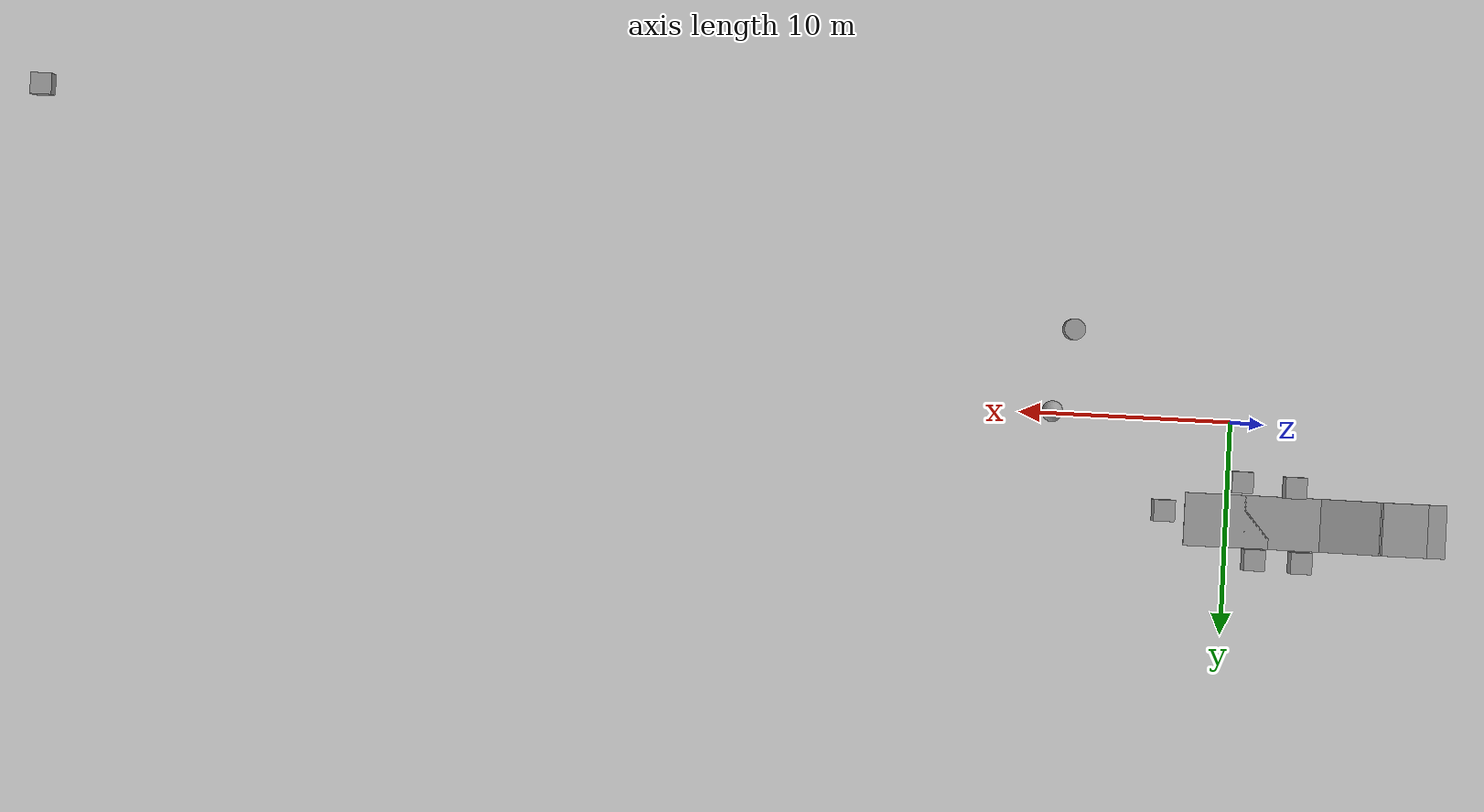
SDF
<sdf version="1.6">
 <world name="default">
  <light name="sun" type="directional">
   <pose>0 0 10 0 -0 0</pose>
   <diffuse>0.8 0.8 0.8 1</diffuse>
   <specular>0.2 0.2 0.2 1</specular>
   <attenuation>
    <range>1000</range>
    <constant>0.9</constant>
    <linear>0.01</linear>
    <quadratic>0.001</quadratic>
   </attenuation>
   <direction>-0.5 0.1 -0.9</direction>
  </light>
  <model name="ground_plane">
   <static>1</static>
   <link name="link">
    <collision name="collision">
     <geometry><plane><normal>0 0 1</normal><size>100 100</size></plane></geometry>
     <surface>
      <contact><collide_bitmask>65535</collide_bitmask></contact>
      <friction><ode><mu>100</mu><mu2>50</mu2></ode></friction>
     </surface>
    </collision>
    <visual name="visual">
     <cast_shadows>0</cast_shadows>
     <geometry><plane><normal>0 0 1</normal><size>100 100</size></plane></geometry>
     <material>
      <script><uri>file://media/materials/scripts/gazebo.material</uri><name>Gazebo/Grey</name></script>
     </material>
    </visual>
   </link>
  </model>
  <gravity>0 0 -9.8</gravity>
  <magnetic_field>6e-06 2.3e-05 -4.2e-05</magnetic_field>
  <atmosphere type="adiabatic"/>
  <physics name="default_physics" default="0" type="ode">
   <max_step_size>0.001</max_step_size>
   <real_time_factor>1</real_time_factor>
   <real_time_update_rate>1000</real_time_update_rate>
  </physics>
  <scene><ambient>0.4 0.4 0.4 1</ambient><background>0.7 0.7 0.7 1</background><shadows>1</shadows></scene>
  <audio><device>default</device></audio>
  <spherical_coordinates>
   <surface_model>EARTH_WGS84</surface_model>
   <latitude_deg>0</latitude_deg>
   <longitude_deg>0</longitude_deg>
   <elevation>0</elevation>
   <heading_deg>0</heading_deg>
  </spherical_coordinates>
  <model name="Diff_Drive">
   <link name="base_link">
    <inertial>
     <mass>5.00001</mass>
     <inertia><ixx>1</ixx><ixy>0</ixy><ixz>-2.59999e-08</ixz><iyy>1</iyy><iyz>0</iyz><izz>1</izz></inertia>
    </inertial>
    <sensor name="camera" type="depth">
     <always_on>1</always_on>
     <visualize>1</visualize>
     <update_rate>20</update_rate>
     <camera name="__default__">
      <pose>0 0 0 -1.57079 -1.57079 3.14159</pose>
      <horizontal_fov>1.0472</horizontal_fov>
      <image><format>B8G8R8</format><width>640</width><height>480</height></image>
      <clip><near>0.05</near><far>8</far></clip>
     </camera>
     <plugin name="kinect_camera_controller" filename="libgazebo_ros_openni_kinect.so">
      <cameraName>camera</cameraName>
      <alwaysOn>1</alwaysOn>
      <updateRate>10</updateRate>
      <imageTopicName>rgb/image_raw</imageTopicName>
      <depthImageTopicName>depth/image_raw</depthImageTopicName>
      <pointCloudTopicName>depth/points</pointCloudTopicName>
      <cameraInfoTopicName>rgb/camera_info</cameraInfoTopicName>
      <depthImageCameraInfoTopicName>depth/camera_info</depthImageCameraInfoTopicName>
      <frameName>camera_link</frameName>
      <baseline>0.1</baseline>
      <distortion_k1>0.0</distortion_k1>
      <distortion_k2>0.0</distortion_k2>
      <distortion_k3>0.0</distortion_k3>
      <distortion_t1>0.0</distortion_t1>
      <distortion_t2>0.0</distortion_t2>
      <pointCloudCutoff>0.4</pointCloudCutoff>
      <robotNamespace>/</robotNamespace>
     </plugin>
     <pose>0.05 0 0.05 -1.5708 -0 -1.5708</pose>
    </sensor>
    <sensor name="base_link_hokuyo_sensor" type="ray">
     <visualize>0</visualize>
     <update_rate>40</update_rate>
     <ray>
      <scan>
       <horizontal>
        <samples>400</samples>
        <resolution>1</resolution>
        <min_angle>-2.61799</min_angle>
        <max_angle>2.61799</max_angle>
       </horizontal>
       <vertical><samples>1</samples><min_angle>0</min_angle><max_angle>0</max_angle></vertical>
      </scan>
      <range><min>0.1</min><max>30</max><resolution>0.01</resolution></range>
      <noise><type>gaussian</type><stddev>0.01</stddev></noise>
     </ray>
     <plugin name="gazebo_ros_lidar_controller" filename="libgazebo_ros_laser.so">
      <topicName>/scan</topicName>
      <frameName>hokuyo_sensor</frameName>
      <robotNamespace>/</robotNamespace>
     </plugin>
     <pose>0.02 0 0.13 0 -0 0</pose>
    </sensor>
    <sensor name="imu_sensor" type="imu">
     <always_on>1</always_on>
     <update_rate>100</update_rate>
     <visualize>1</visualize>
     <topic>data</topic>
     <plugin name="imu_plugin" filename="libgazebo_ros_imu_sensor.so">
      <topicName>imu/data</topicName>
      <bodyName>imu_link</bodyName>
      <updateRateHZ>10.0</updateRateHZ>
      <gaussianNoise>0.0</gaussianNoise>
      <xyzOffset>0 0 0</xyzOffset>
      <rpyOffset>0 0 0</rpyOffset>
      <frameName>imu_link</frameName>
      <robotNamespace>/</robotNamespace>
     </plugin>
    </sensor>
   </link>
   <link name="left_back_wheel">
    <pose>-0.058 0.115 0.015 0 -0 0</pose>
    <inertial>
     <mass>0.4</mass>
     <inertia>
      <ixx>0.000184189</ixx>
      <ixy>0</ixy>
      <ixz>0</ixz>
      <iyy>0.000184189</iyy>
      <iyz>0</iyz>
      <izz>0.000336111</izz>
     </inertia>
    </inertial>
    <collision name="left_back_wheel_collision">
     <pose>0 0 0 1.57 -0 0</pose>
     <geometry><cylinder><length>0.022</length><radius>0.011</radius></cylinder></geometry>
     <surface>
      <contact><ode><kp>1e+07</kp><kd>1</kd></ode></contact>
      <friction><ode><mu>200</mu><mu2>100</mu2></ode></friction>
     </surface>
    </collision>
    <visual name="left_back_wheel_visual">
     <pose>0 0 0 1.57 -0 0</pose>
     <geometry><cylinder><length>0.022</length><radius>0.011</radius></cylinder></geometry>
     <material>
      <script><name>Gazebo/Black</name><uri>file://media/materials/scripts/gazebo.material</uri></script>
     </material>
    </visual>
   </link>
   <joint name="left_back_wheel_joint" type="revolute">
    <child>left_back_wheel</child>
    <parent>base_link</parent>
    <axis>
     <xyz>0 1 0</xyz>
     <limit><lower>-1e+16</lower><upper>1e+16</upper></limit>
     <dynamics>
      <damping>0</damping>
      <friction>0</friction>
      <spring_reference>0</spring_reference>
      <spring_stiffness>0</spring_stiffness>
     </dynamics>
     <use_parent_model_frame>1</use_parent_model_frame>
    </axis>
   </joint>
   <link name="left_front_wheel">
    <pose>0.062 0.115 0.015 0 -0 0</pose>
    <inertial>
     <mass>0.4</mass>
     <inertia>
      <ixx>0.000184189</ixx>
      <ixy>0</ixy>
      <ixz>0</ixz>
      <iyy>0.000184189</iyy>
      <iyz>0</iyz>
      <izz>0.000336111</izz>
     </inertia>
    </inertial>
    <collision name="left_front_wheel_collision">
     <pose>0 0 0 1.57 -0 0</pose>
     <geometry><cylinder><length>0.022</length><radius>0.011</radius></cylinder></geometry>
     <surface>
      <contact><ode><kp>1e+07</kp><kd>1</kd></ode></contact>
      <friction><ode><mu>200</mu><mu2>100</mu2></ode></friction>
     </surface>
    </collision>
    <visual name="left_front_wheel_visual">
     <pose>0 0 0 1.57 -0 0</pose>
     <geometry><cylinder><length>0.022</length><radius>0.011</radius></cylinder></geometry>
     <material>
      <script><name>Gazebo/Black</name><uri>file://media/materials/scripts/gazebo.material</uri></script>
     </material>
    </visual>
   </link>
   <joint name="left_front_wheel_joint" type="revolute">
    <child>left_front_wheel</child>
    <parent>base_link</parent>
    <axis>
     <xyz>0 1 0</xyz>
     <limit><lower>-1e+16</lower><upper>1e+16</upper></limit>
     <dynamics>
      <damping>0</damping>
      <friction>0</friction>
      <spring_reference>0</spring_reference>
      <spring_stiffness>0</spring_stiffness>
     </dynamics>
     <use_parent_model_frame>1</use_parent_model_frame>
    </axis>
   </joint>
   <link name="right_back_wheel">
    <pose>-0.058 -0.115 0.015 0 -0 0</pose>
    <inertial>
     <mass>0.4</mass>
     <inertia>
      <ixx>0.000184189</ixx>
      <ixy>0</ixy>
      <ixz>0</ixz>
      <iyy>0.000184189</iyy>
      <iyz>0</iyz>
      <izz>0.000336111</izz>
     </inertia>
    </inertial>
    <collision name="right_back_wheel_collision">
     <pose>0 0 0 1.57 -0 0</pose>
     <geometry><cylinder><length>0.022</length><radius>0.011</radius></cylinder></geometry>
     <surface>
      <contact><ode><kp>1e+07</kp><kd>1</kd></ode></contact>
      <friction><ode><mu>200</mu><mu2>100</mu2></ode></friction>
     </surface>
    </collision>
    <visual name="right_back_wheel_visual">
     <pose>0 0 0 1.57 -0 0</pose>
     <geometry><cylinder><length>0.022</length><radius>0.011</radius></cylinder></geometry>
     <material>
      <script><name>Gazebo/Black</name><uri>file://media/materials/scripts/gazebo.material</uri></script>
     </material>
    </visual>
   </link>
   <joint name="right_back_wheel_joint" type="revolute">
    <child>right_back_wheel</child>
    <parent>base_link</parent>
    <axis>
     <xyz>0 1 0</xyz>
     <limit><lower>-1e+16</lower><upper>1e+16</upper></limit>
     <dynamics>
      <damping>0</damping>
      <friction>0</friction>
      <spring_reference>0</spring_reference>
      <spring_stiffness>0</spring_stiffness>
     </dynamics>
     <use_parent_model_frame>1</use_parent_model_frame>
    </axis>
   </joint>
   <link name="right_front_wheel">
    <pose>0.062 -0.115 0.015 0 -0 0</pose>
    <inertial>
     <mass>0.4</mass>
     <inertia>
      <ixx>0.000184189</ixx>
      <ixy>0</ixy>
      <ixz>0</ixz>
      <iyy>0.000184189</iyy>
      <iyz>0</iyz>
      <izz>0.000336111</izz>
     </inertia>
    </inertial>
    <collision name="right_front_wheel_collision">
     <pose>0 0 0 1.57 -0 0</pose>
     <geometry><cylinder><length>0.022</length><radius>0.011</radius></cylinder></geometry>
     <surface>
      <contact><ode><kp>1e+07</kp><kd>1</kd></ode></contact>
      <friction><ode><mu>200</mu><mu2>100</mu2></ode></friction>
     </surface>
    </collision>
    <visual name="right_front_wheel_visual">
     <pose>0 0 0 1.57 -0 0</pose>
     <geometry><cylinder><length>0.022</length><radius>0.011</radius></cylinder></geometry>
     <material>
      <script><name>Gazebo/Black</name><uri>file://media/materials/scripts/gazebo.material</uri></script>
     </material>
    </visual>
   </link>
   <joint name="right_front_wheel_joint" type="revolute">
    <child>right_front_wheel</child>
    <parent>base_link</parent>
    <axis>
     <xyz>0 1 0</xyz>
     <limit><lower>-1e+16</lower><upper>1e+16</upper></limit>
     <dynamics>
      <damping>0</damping>
      <friction>0</friction>
      <spring_reference>0</spring_reference>
      <spring_stiffness>0</spring_stiffness>
     </dynamics>
     <use_parent_model_frame>1</use_parent_model_frame>
    </axis>
   </joint>
   <static>0</static>
   <plugin name="gazebo_ros_control" filename="libgazebo_ros_control.so">
    <robotNamespace>/</robotNamespace>
   </plugin>
   <pose>-0.84494 5.22609 0.000306 -0.000485 0.000874 0.000875</pose>
  </model>
  <light name="user_directional_light_0" type="directional">
   <pose>0.385298 -3.26216 1 0 -0 0</pose>
   <diffuse>0.5 0.5 0.5 1</diffuse>
   <specular>0.1 0.1 0.1 1</specular>
   <direction>0.1 0.1 -0.9</direction>
   <attenuation>
    <range>20</range>
    <constant>0.5</constant>
    <linear>0.01</linear>
    <quadratic>0.001</quadratic>
   </attenuation>
  </light>
  <model name="unit_box">
   <pose>56.6301 -13.0205 0.499995 1e-05 -0 0</pose>
   <link name="link">
    <inertial>
     <mass>1</mass>
     <inertia>
      <ixx>0.166667</ixx>
      <ixy>0</ixy>
      <ixz>0</ixz>
      <iyy>0.166667</iyy>
      <iyz>0</iyz>
      <izz>0.166667</izz>
     </inertia>
    </inertial>
    <collision name="collision"><geometry><box><size>1 1 1</size></box></geometry></collision>
    <visual name="visual">
     <geometry><box><size>1 1 1</size></box></geometry>
     <material>
      <script><name>Gazebo/Grey</name><uri>file://media/materials/scripts/gazebo.material</uri></script>
     </material>
    </visual>
   </link>
  </model>
  <model name="unit_cylinder">
   <pose>7.64521 -3.99386 0.499992 -3e-06 2e-06 0</pose>
   <link name="link">
    <inertial>
     <mass>1</mass>
     <inertia><ixx>0.145833</ixx><ixy>0</ixy><ixz>0</ixz><iyy>0.145833</iyy><iyz>0</iyz><izz>0.125</izz></inertia>
    </inertial>
    <collision name="collision">
     <geometry><cylinder><radius>0.5</radius><length>1</length></cylinder></geometry>
    </collision>
    <visual name="visual">
     <geometry><cylinder><radius>0.5</radius><length>1</length></cylinder></geometry>
     <material>
      <script><name>Gazebo/Grey</name><uri>file://media/materials/scripts/gazebo.material</uri></script>
     </material>
    </visual>
   </link>
  </model>
  <model name="unit_sphere">
   <pose>8.47264 -0.102099 0.5 0 -0 0</pose>
   <link name="link">
    <inertial>
     <mass>1</mass>
     <inertia><ixx>0.1</ixx><ixy>0</ixy><ixz>0</ixz><iyy>0.1</iyy><iyz>0</iyz><izz>0.1</izz></inertia>
    </inertial>
    <collision name="collision"><geometry><sphere><radius>0.5</radius></sphere></geometry></collision>
    <visual name="visual">
     <geometry><sphere><radius>0.5</radius></sphere></geometry>
     <material>
      <script><name>Gazebo/Grey</name><uri>file://media/materials/scripts/gazebo.material</uri></script>
     </material>
    </visual>
   </link>
  </model>
  <model name="Untitled_1">
   <pose>-4.1416 5.89115 0.300677 1.57031 0.000875 -3e-06</pose>
   <link name="Wall_10">
    <collision name="Wall_10_Collision">
     <geometry><box><size>2.25 0.15 2.5</size></box></geometry>
     <pose>0 0 1.25 0 -0 0</pose>
    </collision>
    <visual name="Wall_10_Visual">
     <pose>0 0 1.25 0 -0 0</pose>
     <geometry><box><size>2.25 0.15 2.5</size></box></geometry>
     <material>
      <script><uri>file://media/materials/scripts/gazebo.material</uri><name>Gazebo/Grey</name></script>
      <ambient>1 1 1 1</ambient>
     </material>
     <meta><layer>0</layer></meta>
    </visual>
    <pose>-4.12644 0.368817 0 0 -0 3.14159</pose>
   </link>
   <link name="Wall_11">
    <collision name="Wall_11_Collision">
     <geometry><box><size>1 0.15 2.5</size></box></geometry>
     <pose>0 0 1.25 0 -0 0</pose>
    </collision>
    <visual name="Wall_11_Visual">
     <pose>0 0 1.25 0 -0 0</pose>
     <geometry><box><size>1 0.15 2.5</size></box></geometry>
     <material>
      <script><uri>file://media/materials/scripts/gazebo.material</uri><name>Gazebo/Grey</name></script>
      <ambient>0 0 0 1</ambient>
     </material>
     <meta><layer>0</layer></meta>
    </visual>
    <pose>-5.60144 0.368817 0 0 -0 3.14159</pose>
   </link>
   <link name="Wall_7">
    <collision name="Wall_7_Collision">
     <geometry><box><size>4 0.15 2.5</size></box></geometry>
     <pose>0 0 1.25 0 -0 0</pose>
    </collision>
    <visual name="Wall_7_Visual">
     <pose>0 0 1.25 0 -0 0</pose>
     <geometry><box><size>4 0.15 2.5</size></box></geometry>
     <material>
      <script><uri>file://media/materials/scripts/gazebo.material</uri><name>Gazebo/Grey</name></script>
      <ambient>1 1 1 1</ambient>
     </material>
     <meta><layer>0</layer></meta>
    </visual>
    <pose>4.10144 -0.368817 0 0 -0 0</pose>
   </link>
   <link name="Wall_8">
    <collision name="Wall_8_Collision">
     <geometry><box><size>6.5 0.15 2.5</size></box></geometry>
     <pose>0 0 1.25 0 -0 0</pose>
    </collision>
    <visual name="Wall_8_Visual">
     <pose>0 0 1.25 0 -0 0</pose>
     <geometry><box><size>6.5 0.15 2.5</size></box></geometry>
     <material>
      <script><uri>file://media/materials/scripts/gazebo.material</uri><name>Gazebo/Grey</name></script>
      <ambient>1 1 1 1</ambient>
     </material>
     <meta><layer>0</layer></meta>
    </visual>
    <pose>2.85144 -0.368817 0 0 -0 3.14159</pose>
   </link>
   <link name="Wall_9">
    <collision name="Wall_9_Collision">
     <geometry><box><size>3 0.15 2.5</size></box></geometry>
     <pose>0 0 1.25 0 -0 0</pose>
    </collision>
    <visual name="Wall_9_Visual">
     <pose>0 0 1.25 0 -0 0</pose>
     <geometry><box><size>3 0.15 2.5</size></box></geometry>
     <material>
      <script><uri>file://media/materials/scripts/gazebo.material</uri><name>Gazebo/Grey</name></script>
      <ambient>1 1 1 1</ambient>
     </material>
     <meta><layer>0</layer></meta>
    </visual>
    <pose>-1.7 -0 0 0 -0 2.87979</pose>
   </link>
   <static>1</static>
  </model>
  <model name="unit_box_0">
   <pose>-3.50125 6.43015 0.499995 1e-05 -0 0</pose>
   <link name="link">
    <inertial>
     <mass>1</mass>
     <inertia>
      <ixx>0.166667</ixx>
      <ixy>0</ixy>
      <ixz>0</ixz>
      <iyy>0.166667</iyy>
      <iyz>0</iyz>
      <izz>0.166667</izz>
     </inertia>
    </inertial>
    <collision name="collision"><geometry><box><size>1 1 1</size></box></geometry></collision>
    <visual name="visual">
     <geometry><box><size>1 1 1</size></box></geometry>
     <material>
      <script><name>Gazebo/Grey</name><uri>file://media/materials/scripts/gazebo.material</uri></script>
     </material>
    </visual>
   </link>
  </model>
  <model name="unit_box_1">
   <pose>-1.30158 6.38487 0.502415 -0.004104 0.000753 5.4e-05</pose>
   <link name="link">
    <inertial>
     <mass>1</mass>
     <inertia>
      <ixx>0.166667</ixx>
      <ixy>0</ixy>
      <ixz>0</ixz>
      <iyy>0.166667</iyy>
      <iyz>0</iyz>
      <izz>0.166667</izz>
     </inertia>
    </inertial>
    <collision name="collision"><geometry><box><size>1 1 1</size></box></geometry></collision>
    <visual name="visual">
     <geometry><box><size>1 1 1</size></box></geometry>
     <material>
      <script><name>Gazebo/Grey</name><uri>file://media/materials/scripts/gazebo.material</uri></script>
     </material>
    </visual>
   </link>
  </model>
  <model name="unit_box_2">
   <pose>-3.09255 2.91758 0.503893 0.006943 0.000868 -8e-06</pose>
   <link name="link">
    <inertial>
     <mass>1</mass>
     <inertia>
      <ixx>0.166667</ixx>
      <ixy>0</ixy>
      <ixz>0</ixz>
      <iyy>0.166667</iyy>
      <iyz>0</iyz>
      <izz>0.166667</izz>
     </inertia>
    </inertial>
    <collision name="collision"><geometry><box><size>1 1 1</size></box></geometry></collision>
    <visual name="visual">
     <geometry><box><size>1 1 1</size></box></geometry>
     <material>
      <script><name>Gazebo/Grey</name><uri>file://media/materials/scripts/gazebo.material</uri></script>
     </material>
    </visual>
   </link>
  </model>
  <model name="unit_box_3">
   <pose>-0.571872 2.77752 0.499995 -1e-05 -0 -0</pose>
   <link name="link">
    <inertial>
     <mass>1</mass>
     <inertia>
      <ixx>0.166667</ixx>
      <ixy>0</ixy>
      <ixz>0</ixz>
      <iyy>0.166667</iyy>
      <iyz>0</iyz>
      <izz>0.166667</izz>
     </inertia>
    </inertial>
    <collision name="collision"><geometry><box><size>1 1 1</size></box></geometry></collision>
    <visual name="visual">
     <geometry><box><size>1 1 1</size></box></geometry>
     <material>
      <script><name>Gazebo/Grey</name><uri>file://media/materials/scripts/gazebo.material</uri></script>
     </material>
    </visual>
   </link>
  </model>
  <model name="unit_box_4">
   <pose>3.03195 4.27745 0.499995 0 1e-05 0</pose>
   <link name="link">
    <inertial>
     <mass>1</mass>
     <inertia>
      <ixx>0.166667</ixx>
      <ixy>0</ixy>
      <ixz>0</ixz>
      <iyy>0.166667</iyy>
      <iyz>0</iyz>
      <izz>0.166667</izz>
     </inertia>
    </inertial>
    <collision name="collision"><geometry><box><size>1 1 1</size></box></geometry></collision>
    <visual name="visual">
     <geometry><box><size>1 1 1</size></box></geometry>
     <material>
      <script><name>Gazebo/Grey</name><uri>file://media/materials/scripts/gazebo.material</uri></script>
     </material>
    </visual>
   </link>
  </model>
 </world>
</sdf>
